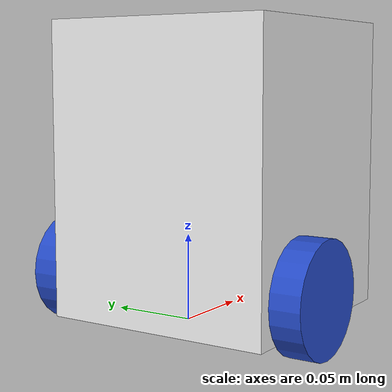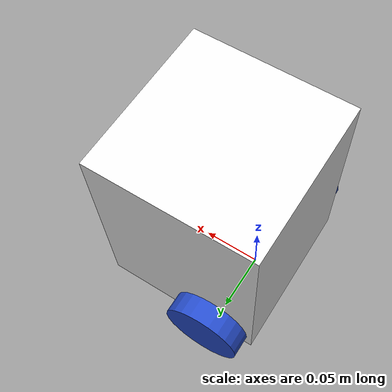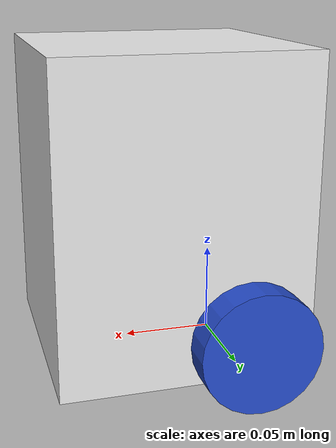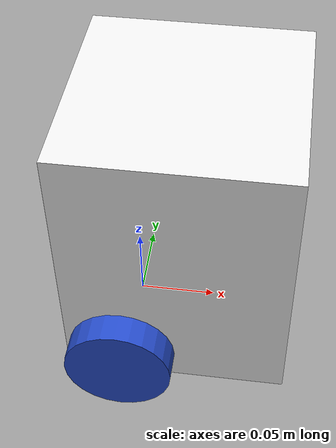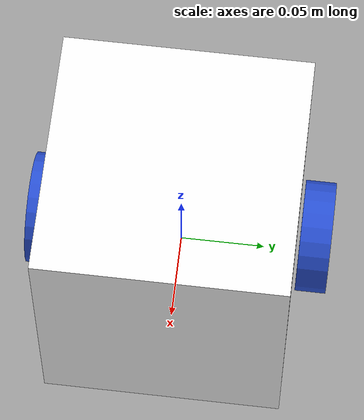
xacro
<?xml version="1.0"?>
<robot xmlns:xacro="http://www.ros.org/wiki/xacro">

    <!-- Base Link -->
    <link name="base_link">
    </link>

    <!-- BASE_FOOTPRINT LINK -->
    <joint name="base_footprint_joint" type="fixed">
        <parent link="base_link"/>
        <child link="base_footprint"/>
        <origin xyz="0 0 0" rpy="0 0 0"/>
    </joint>

    <link name="base_footprint">
    </link>

    <!-- Chassis Link -->
    <joint name="chassis_joint" type="fixed">
        <parent link="base_link"/>
        <child link="chassis"/>
        <origin xyz="-0.0365 0 0"/>
    </joint>

    <!-- Chassis 137.6mm² -->
    <link name="chassis">
        <visual>
            <origin xyz="0.069 0 0.0865" rpy="0 0 0"/>
            <geometry>
                <box size="0.138 0.138 0.173"/>
            </geometry>
            <material name="white"/>
        </visual>
        <collision>
            <origin xyz="0.069 0 0.0865" rpy="0 0 0"/>
            <geometry>
                <box size="0.138 0.138 0.173"/>
            </geometry>
            <material name="white"/>
        </collision>
        <xacro:inertial_box mass="1.6" x="0.138" y="0.138" z="0.173">
            <origin xyz="0.069 0 0.0865" rpy="0 0 0"/>
        </xacro:inertial_box>
    </link>
    <gazebo reference="chassis">
        <material>Gazebo/Orange</material>
    </gazebo>

    <!-- LEFT WHEEL 66mm diameter, 18mm wide-->
    <joint name="left_wheel_joint" type="continuous">
        <parent link="base_link"/>
        <child link="left_wheel"/>
        <origin xyz="0 0.08 0.023" rpy="-${pi/2} 0 0"/>
        <axis xyz="0 0 1"/>
    </joint>

    <link name="left_wheel">
        <visual>
            <geometry>
                <cylinder length="0.018" radius="0.033" />
            </geometry>
            <material name="blue"/>
        </visual>
        <collision>
            <geometry>
                <cylinder length="0.018" radius="0.033" />
            </geometry>
            <material name="blue"/>
        </collision>
        <xacro:inertial_cylinder mass="0.1" length="0.018" radius="0.033">
            <origin xyz="0 0 0" rpy="0 0 0"/>
        </xacro:inertial_cylinder>
    </link>
    <gazebo reference="left_wheel">
        <material>Gazebo/Blue</material>
    </gazebo>

    <!-- RIGHT WHEEL -->
    <joint name="right_wheel_joint" type="continuous">
        <parent link="base_link"/>
        <child link="right_wheel"/>
        <origin xyz="0 -0.08 0.023" rpy="${pi/2} 0 0"/>
        <axis xyz="0 0 -1"/>
    </joint>

    <link name="right_wheel">
        <visual>
            <geometry>
                <cylinder length="0.018" radius="0.033" />
            </geometry>
            <material name="blue"/>
        </visual>
        <collision>
            <geometry>
                <cylinder length="0.018" radius="0.033" />
            </geometry>
            <material name="blue"/>
        </collision>
        <xacro:inertial_cylinder mass="0.1" length="0.018" radius="0.033">
            <origin xyz="0 0 0" rpy="0 0 0"/>
        </xacro:inertial_cylinder>
    </link>
    <gazebo reference="right_wheel">
        <material>Gazebo/Blue</material>
    </gazebo>

    <!-- CASTER WHEEL 10mm diameter-->
    <joint name="caster_wheel_joint" type="fixed">
        <parent link="chassis"/>
        <child link="caster_wheel"/>
        <origin xyz="0.12 0 -0.005" rpy="0 0 0"/>
    </joint>

    <link name="caster_wheel">
        <visual>
            <geometry>
                <sphere radius="0.005" />
            </geometry>
            <material name="black"/>
        </visual>
        <collision>
            <geometry>
                <sphere radius="0.005" />
            </geometry>
            <material name="black"/>
        </collision>
    </link>
    <gazebo reference="caster_wheel">
        <material>Gazebo/Black</material>
        <mu1 value="0.001"/>
        <mu2 value="0.001"/>
    </gazebo>

</robot>
